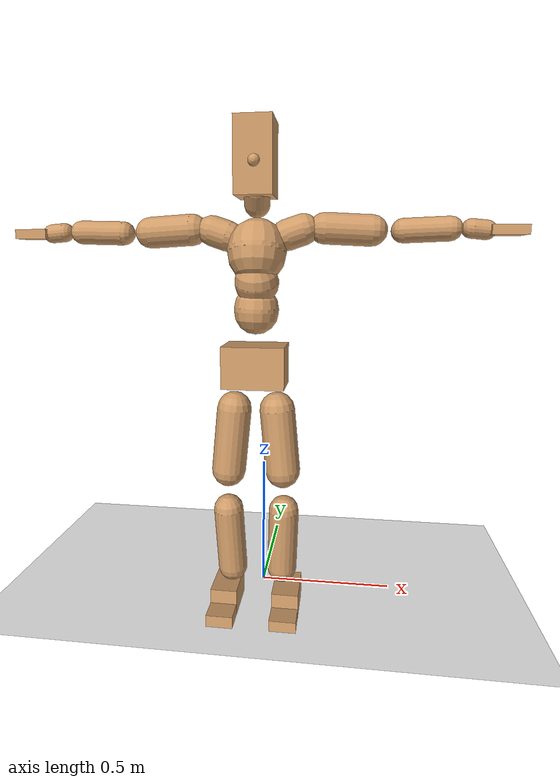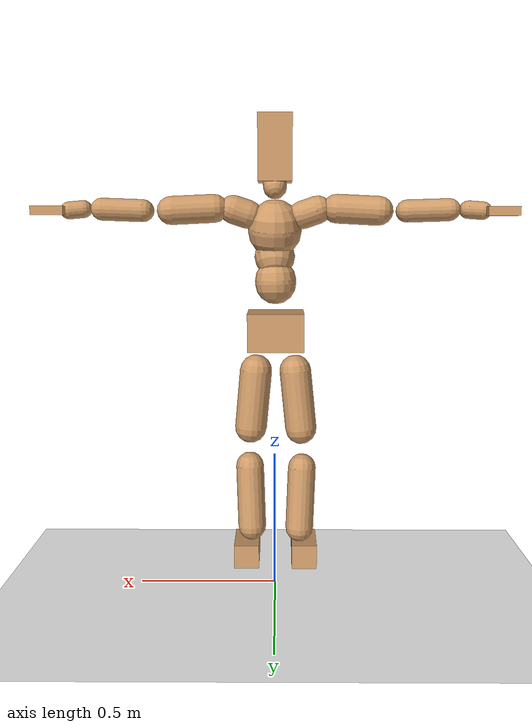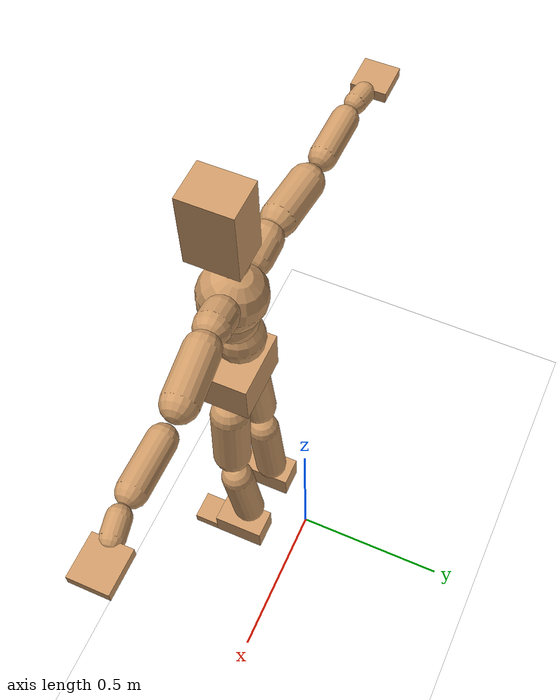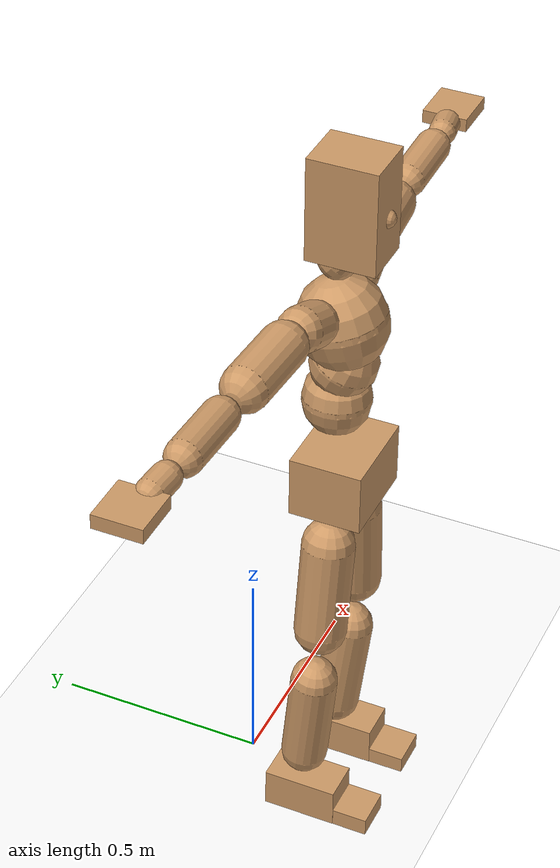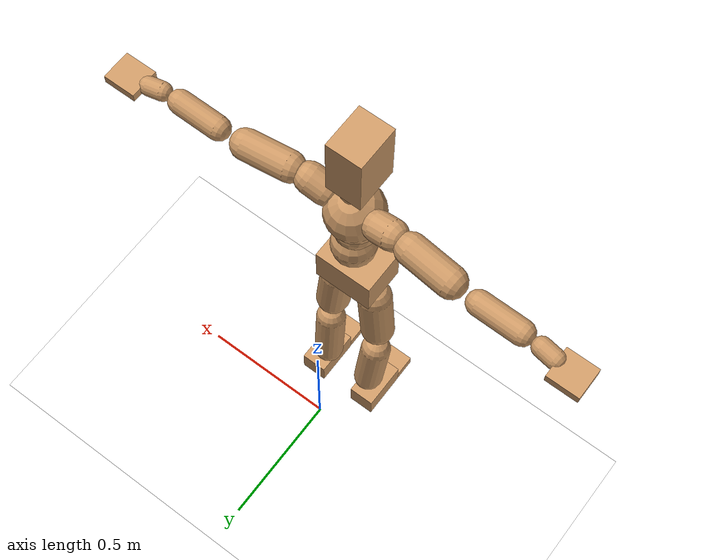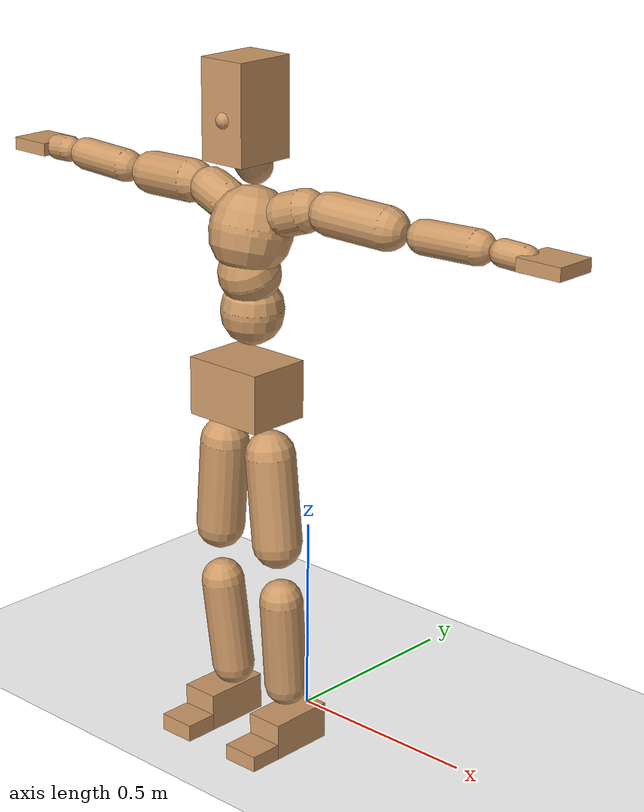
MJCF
<mujoco model="humanoid">
  <option integrator="implicitfast" />

  <visual>
    <global offwidth="1280" offheight="960" />
    <headlight active="1" ambient="0.34 0.34 0.34" diffuse="0.5 0.5 0.5" />
  </visual>

  <default>
    <joint damping="2" stiffness="2" armature="0.01" limited="true" solimplimit="0 .99 .01" />
    <geom condim="1" friction="0.7 0.005 0.0001" solimp=".99 .99 .003" solref="0.015 1" margin="0.001" rgba="0.8 0.6 .4 1" />
    <default class="smplcontact">
      <geom condim="3" friction="1. 0.005 0.0001" solref="0.015 1" solimp="0.98 0.98 0.001" priority="1" />
    </default>
    <default class="stiff_medium">
      <joint stiffness="10" />
    </default>
    <default class="stiff_medium_higher">
      <joint stiffness="50" />
    </default>
    <default class="stiff_high">
      <joint stiffness="100" />
    </default>
  </default>

  <asset>
    <texture type="skybox" builtin="gradient" rgb1="0.99 0.99 0.99" rgb2="0.608 0.828 0.892" width="100" />
    <texture builtin="flat" height="1278" mark="cross" markrgb="1 1 1" name="texgeom" random="0.01" rgb1="0.8 0.6 0.4" rgb2="0.8 0.6 0.4" type="cube" width="127" />
    <texture name="texplane" type="2d" builtin="checker" markrgb="1 1 1" rgb1="0.756 0.772 0.76" rgb2="0.6 0.6 0.6" width="100" height="100" />
    <material name="MatPlane" reflectance="0.5" texture="texplane" texrepeat="1 1" texuniform="true" />
    <material name="geom" texture="texgeom" texuniform="true" />
  </asset>

  <worldbody>
    <light name="tracking_light" pos="0 0 7" dir="0 0 -1" directional="true" cutoff="100" exponent="1" diffuse="1 1 1" specular="0.1 0.1 0.1" mode="trackcom" />
    <camera name="back" pos="0 3 2.4" xyaxes="-1 0 0 0 -1 2" mode="trackcom" />
    <camera name="side" pos="-3 0 2.4" xyaxes="0 -1 0 1 0 2" mode="trackcom" />
    <camera name="front_side" pos="-2.8 -2.8 0.8" xyaxes="0.5 -0.5 0 0.1 0.1 1" mode="trackcom" />
    <geom condim="3" name="floor" pos="0 0 0" rgba="1 1 1 1" size="100 100 .2" type="plane" material="MatPlane" />
    <body name="Pelvis" pos="-0.0018 -0.2233 0.9367" euler="90 0 0">
      <site name="Pelvis" size="0.01" />
      <freejoint name="Pelvis" />
      <geom type="box" pos="-0.0000 -0.0121 -0.0055" size="0.1069 0.0722 0.083" quat="1.0000 0.0000 0.0000 0.0000" density="3165.830099" name="Pelvis" />
      <body name="L_Hip" pos="0.0695 -0.0914 -0.0068">
        <joint name="L_Hip_x" type="hinge" pos="0 0 0" axis="1 0 0" stiffness="10.0" range="-160.0 22.92" class="stiff_medium" damping="15.0" armature="0.01"/>
        <joint name="L_Hip_y" type="hinge" pos="0 0 0" axis="0 1 0" stiffness="10.0" range="-70.0 70.0" class="stiff_medium" damping="10.000000000000002" armature="0.010000000000000007"/>
        <joint name="L_Hip_z" type="hinge" pos="0 0 0" axis="0 0 1" stiffness="10.0" range="-28.65 90.0" class="stiff_medium" damping="9.999999999999998" armature="0.009999999999999997"/>
        <geom type="capsule" density="2040.816327" fromto="0.0069 -0.075 -0.0009 0.0274 -0.3002 -0.0036" size="0.0615" name="L_Hip" />
        <body name="L_Knee" pos="0.0343 -0.3752 -0.0045">
          <joint name="L_Knee_x" type="hinge" pos="0 0 0" axis="1 0 0" range="-5.16 171.89" damping="8.000000000000002" armature="0.010000000000000005" stiffness="2.0"/>
          <joint name="L_Knee_y" type="hinge" pos="0 0 0" axis="0 1 0" range="-4.58 6.88" damping="7.999999999999999" armature="0.009999999999999998" stiffness="2.0"/>
          <joint name="L_Knee_z" type="hinge" pos="0 0 0" axis="0 0 1" range="-6.88 4.58" damping="7.999999999999999" armature="0.009999999999999998" stiffness="2.0"/>
          <geom type="capsule" density="1234.567901" fromto="-0.0027 -0.0796 -0.0087 -0.0109 -0.3184 -0.035" size="0.0541" name="L_Knee" />
          <body name="L_Ankle" pos="-0.0136 -0.398 -0.0437">
            <joint name="L_Ankle_x" type="hinge" pos="0 0 0" axis="1 0 0" range="-45.84 45.84" class="stiff_medium" damping="6.000000000000043" armature="0.010000000000000142" stiffness="10.0"/>
            <joint name="L_Ankle_y" type="hinge" pos="0 0 0" axis="0 1 0" range="-74.48 22.92" class="stiff_medium" damping="3.0" armature="0.010000000000000002" stiffness="10.0"/>
            <joint name="L_Ankle_z" type="hinge" pos="0 0 0" axis="0 0 1" range="-4.58 4.58" class="stiff_medium" damping="5.999999999999927" armature="0.009999999999999757" stiffness="10.0"/>
            <geom type="box" pos="0.0233 -0.0239 0.0242" size="0.0483 0.0464 0.085" quat="1.0000 0.0000 0.0000 0.0000" density="449.071558" name="L_Ankle" class="smplcontact" />
            <body name="L_Toe" pos="0.0264 -0.0558 0.1193">
              <joint name="L_Toe_x" type="hinge" pos="0 0 0" axis="1 0 0" range="-91.67 22.92" armature="0.01000000000000051" damping="2.000000000000051" stiffness="2.0"/>
              <joint name="L_Toe_y" type="hinge" pos="0 0 0" axis="0 1 0" range="-4.58 4.58" armature="0.010000000000000024" damping="2.000000000000002" stiffness="2.0"/>
              <joint name="L_Toe_z" type="hinge" pos="0 0 0" axis="0 0 1" range="-4.58 4.58" armature="0.010000000000001008" damping="2.000000000000101" stiffness="2.0"/>
              <geom type="box" pos="-0.003 0.0055 0.0248" size="0.0478 0.02 0.0496" quat="1.0000 0.0000 0.0000 0.0000" density="423.206892" name="L_Toe" class="smplcontact" />
            </body>
          </body>
        </body>
      </body>
      <body name="R_Hip" pos="-0.0677 -0.0905 -0.0043">
        <joint name="R_Hip_x" type="hinge" pos="0 0 0" axis="1 0 0" stiffness="10.0" range="-160.0 22.92" class="stiff_medium" damping="15.0" armature="0.01"/>
        <joint name="R_Hip_y" type="hinge" pos="0 0 0" axis="0 1 0" stiffness="10.0" range="-70.0 70.0" class="stiff_medium" damping="10.000000000000002" armature="0.010000000000000007"/>
        <joint name="R_Hip_z" type="hinge" pos="0 0 0" axis="0 0 1" stiffness="10.0" range="-90.0 28.65" class="stiff_medium" damping="9.999999999999998" armature="0.009999999999999997"/>
        <geom type="capsule" density="2040.816327" fromto="-0.0077 -0.0765 -0.0018 -0.0306 -0.3061 -0.0071" size="0.0606" name="R_Hip" />
        <body name="R_Knee" pos="-0.0383 -0.3826 -0.0089">
          <joint name="R_Knee_x" type="hinge" pos="0 0 0" axis="1 0 0" range="-5.16 171.89" damping="8.000000000000002" armature="0.010000000000000005" stiffness="2.0"/>
          <joint name="R_Knee_y" type="hinge" pos="0 0 0" axis="0 1 0" range="-6.88 4.58" damping="7.999999999999999" armature="0.009999999999999998" stiffness="2.0"/>
          <joint name="R_Knee_z" type="hinge" pos="0 0 0" axis="0 0 1" range="-4.58 6.88" damping="7.999999999999999" armature="0.009999999999999998" stiffness="2.0"/>
          <geom type="capsule" density="1234.567901" fromto="0.0032 -0.0797 -0.0085 0.0126 -0.3187 -0.0338" size="0.0541" name="R_Knee" />
          <body name="R_Ankle" pos="0.0158 -0.3984 -0.0423">
            <joint name="R_Ankle_x" type="hinge" pos="0 0 0" axis="1 0 0" range="-45.84 45.84" class="stiff_medium" damping="6.000000000000043" armature="0.010000000000000142" stiffness="10.0"/>
            <joint name="R_Ankle_y" type="hinge" pos="0 0 0" axis="0 1 0" range="-22.92 74.48" class="stiff_medium" damping="3.0" armature="0.010000000000000002" stiffness="10.0"/>
            <joint name="R_Ankle_z" type="hinge" pos="0 0 0" axis="0 0 1" range="-4.58 4.58" class="stiff_medium" damping="5.999999999999927" armature="0.009999999999999757" stiffness="10.0"/>
            <geom type="box" pos="-0.0212 -0.0174 0.0256" size="0.0483 0.0478 0.0865" quat="1.0000 0.0000 0.0000 0.0000" density="434.700981" name="R_Ankle" class="smplcontact" />
            <body name="R_Toe" pos="-0.0254 -0.0481 0.1233">
              <joint name="R_Toe_x" type="hinge" pos="0 0 0" axis="1 0 0" range="-91.67 22.92" armature="0.01000000000000051" damping="2.000000000000051" stiffness="2.0"/>
              <joint name="R_Toe_y" type="hinge" pos="0 0 0" axis="0 1 0" range="-4.58 4.58" armature="0.010000000000000024" damping="2.000000000000002" stiffness="2.0"/>
              <joint name="R_Toe_z" type="hinge" pos="0 0 0" axis="0 0 1" range="-4.58 4.58" armature="0.010000000000001008" damping="2.000000000000101" stiffness="2.0"/>
              <geom type="box" pos="0.0042 0.0045 0.0227" size="0.0479 0.0216 0.0493" quat="1.0000 0.0000 0.0000 0.0000" density="407.384095" name="R_Toe" class="smplcontact" />
            </body>
          </body>
        </body>
      </body>
      <body name="Torso" pos="-0.0025 0.109 -0.0267">
        <joint name="Torso_x" type="hinge" pos="0 0 0" axis="1 0 0" range="-25.78 57.3" class="stiff_medium" damping="15.606222008535829" armature="0.010480967312446727" stiffness="10.327891739130434"/>
        <joint name="Torso_y" type="hinge" pos="0 0 0" axis="0 1 0" range="-57.3 57.3" class="stiff_high" damping="20.36774299451142" armature="0.010017785467159812" stiffness="103.52711086956519"/>
        <joint name="Torso_z" type="hinge" pos="0 0 0" axis="0 0 1" range="-34.38 34.38" class="stiff_high" damping="20.603858142408143" armature="0.010324343107383836" stiffness="102.79563695652172"/>
        <geom type="capsule" density="2040.816327" fromto="0.0025 0.0608 0.0005 0.003 0.0743 0.0006" size="0.0769" name="Torso" />
        <body name="Spine" pos="0.0055 0.1352 0.0011">
          <joint name="Spine_x" type="hinge" pos="0 0 0" axis="1 0 0" stiffness="10.395519347826085" range="-25.78 57.3" class="stiff_medium" damping="15.790981391997487" armature="0.01066079357971155"/>
          <joint name="Spine_y" type="hinge" pos="0 0 0" axis="0 1 0" stiffness="10.38605934782609" range="-57.3 57.3" class="stiff_high" damping="8.160160705144056" armature="0.010017668351115701"/>
          <joint name="Spine_z" type="hinge" pos="0 0 0" axis="0 0 1" stiffness="20.747770434782606" range="-34.38 34.38" class="stiff_high" damping="12.410397739807408" armature="0.01031020902973837"/>
          <geom type="capsule" density="2040.816327" fromto="0.0007 0.0238 0.0114 0.0008 0.0291 0.014" size="0.0755" name="Spine" />
          <body name="Chest" pos="0.0015 0.0529 0.0254">
            <joint name="Chest_x" type="hinge" pos="0 0 0" axis="1 0 0" stiffness="10.504091521739129" range="-25.78 57.3" class="stiff_medium" damping="15.939816896904308" armature="0.010750425189862658"/>
            <joint name="Chest_y" type="hinge" pos="0 0 0" axis="0 1 0" stiffness="10.292408478260867" range="-57.3 57.3" class="stiff_high" damping="8.122657669585129" armature="0.010016115238695219"/>
            <joint name="Chest_z" type="hinge" pos="0 0 0" axis="0 0 1" stiffness="20.94831347826087" range="-34.38 34.38" class="stiff_high" damping="12.455440920563023" armature="0.010285766274655423"/>
            <geom type="capsule" density="2040.816327" fromto="-0.0009 0.0682 -0.0173 -0.001 0.0833 -0.0212" size="0.1002" name="Chest" />
            <body name="Neck" pos="-0.0028 0.2139 -0.0429">
              <joint name="Neck_x" type="hinge" pos="0 0 0" axis="1 0 0" range="-28.65 57.3" class="stiff_medium_higher" damping="11.20315755829913" armature="0.011321452453359328" stiffness="55.430493478260864"/>
              <joint name="Neck_y" type="hinge" pos="0 0 0" axis="0 1 0" range="-40.11 40.11" class="stiff_medium_higher" damping="11.369231832879258" armature="0.011644842483068246" stiffness="55.50072173913044"/>
              <joint name="Neck_z" type="hinge" pos="0 0 0" axis="0 0 1" range="-40.11 40.11" class="stiff_medium_higher" damping="11.224464726681385" armature="0.011319012250762291" stiffness="55.653534782608695"/>
              <geom type="capsule" density="1000" fromto="0.001 0.013 0.0103 0.0041 0.052 0.0411" size="0.0436" name="Neck" />
              <body name="Head" pos="0.0052 0.065 0.0513">
                <joint name="Head_x" type="hinge" pos="0 0 0" axis="1 0 0" range="-28.65 57.3" class="stiff_medium_higher" damping="2.2715497215959646" armature="0.011550969347663951" stiffness="55.83880000000001"/>
                <joint name="Head_y" type="hinge" pos="0 0 0" axis="0 1 0" range="-40.11 40.11" class="stiff_medium_higher" damping="2.313515930511325" armature="0.011981713344327065" stiffness="55.83880000000001"/>
                <joint name="Head_z" type="hinge" pos="0 0 0" axis="0 0 1" range="-40.11 40.11" class="stiff_medium_higher" damping="2.2694516692472844" armature="0.011529641752350706" stiffness="55.83880000000001"/>
                <geom type="box" pos="-0.0042 0.0876 -0.0116" size="0.0628725 0.119728 0.07885" quat="1.0000 0.0000 0.0000 0.0000" density="1018.069894" name="Head" />
                <geom type="capsule" name="nose" size="0.02075 0.010375" pos="0 0.07 0.05" quat="1 0 0 0" mass="0" contype="0" conaffinity="0" />
              </body>
            </body>
            <body name="L_Thorax" pos="0.0788 0.1217 -0.0341">
              <joint name="L_Thorax_x" type="hinge" pos="0 0 0" axis="1 0 0" range="-10.89 4.58" class="stiff_medium_higher" damping="19.999999999999993" armature="0.009999999999999993" stiffness="50.0"/>
              <joint name="L_Thorax_y" type="hinge" pos="0 0 0" axis="0 1 0" range="-28.65 17.19" class="stiff_medium_higher" damping="20.0" armature="0.01" stiffness="50.0"/>
              <joint name="L_Thorax_z" type="hinge" pos="0 0 0" axis="0 0 1" range="-31.51 40.11" class="stiff_medium_higher" damping="19.999999999999996" armature="0.009999999999999997" stiffness="50.0"/>
              <geom type="capsule" density="1000" fromto="0.0182 0.0061 -0.0018 0.0728 0.0244 -0.0071" size="0.0521" name="L_Thorax" />
              <body name="L_Shoulder" pos="0.091 0.0305 -0.0089">
                <joint name="L_Shoulder_x" type="hinge" pos="0 0 0" axis="1 0 0" range="-97.4 97.4" class="stiff_medium" damping="6.000000000000025" armature="0.010000000000000087" stiffness="10.0"/>
                <joint name="L_Shoulder_y" type="hinge" pos="0 0 0" axis="0 1 0" range="-108.86 80.21" class="stiff_medium" damping="5.999999999999999" armature="0.009999999999999998" stiffness="10.0"/>
                <joint name="L_Shoulder_z" type="hinge" pos="0 0 0" axis="0 0 1" range="-97.4 85.94" class="stiff_medium" damping="6.0" armature="0.01" stiffness="10.0"/>
                <geom type="capsule" density="1000" fromto="0.0519 -0.0026 -0.0055 0.2077 -0.0102 -0.022" size="0.0517" name="L_Shoulder" />
                <body name="L_Elbow" pos="0.2596 -0.0128 -0.0275">
                  <joint name="L_Elbow_x" type="hinge" pos="0 0 0" axis="1 0 0" range="-17.19 4.58" damping="4.999999999999928" armature="0.009999999999999714" stiffness="2.0"/>
                  <joint name="L_Elbow_y" type="hinge" pos="0 0 0" axis="0 1 0" range="-180.0 17.19" damping="5.0000000000000036" armature="0.010000000000000014" stiffness="2.0"/>
                  <joint name="L_Elbow_z" type="hinge" pos="0 0 0" axis="0 0 1" range="-100.84 4.58" damping="5.000000000000001" armature="0.010000000000000005" stiffness="2.0"/>
                  <geom type="capsule" density="1000" fromto="0.0498 0.0018 -0.0002 0.1994 0.0072 -0.0009" size="0.0405" name="L_Elbow" />
                  <body name="L_Wrist" pos="0.2492 0.009 -0.0012">
                    <joint name="L_Wrist_x" type="hinge" pos="0 0 0" axis="1 0 0" range="-180.0 22.92" armature="0.009999999999999681" damping="1.999999999999968" stiffness="2.0"/>
                    <joint name="L_Wrist_y" type="hinge" pos="0 0 0" axis="0 1 0" range="-17.19 17.19" armature="0.009999999999999959" damping="1.9999999999999958" stiffness="2.0"/>
                    <joint name="L_Wrist_z" type="hinge" pos="0 0 0" axis="0 0 1" range="-22.92 22.92" armature="0.00999999999999996" damping="1.999999999999996" stiffness="2.0"/>
                    <geom type="capsule" density="1000" fromto="0.0168 -0.0016 -0.003 0.0672 -0.0065 -0.012" size="0.0318" name="L_Wrist" class="smplcontact" />
                    <body name="L_Hand" pos="0.084 -0.0082 -0.0149">
                      <joint name="L_Hand_x" type="hinge" pos="0 0 0" axis="1 0 0" range="-17.19 17.19" armature="0.009999999999999825" damping="1.9999999999999825" stiffness="2.0"/>
                      <joint name="L_Hand_y" type="hinge" pos="0 0 0" axis="0 1 0" range="-51.57 51.57" armature="0.010000000000000061" damping="2.0000000000000058" stiffness="2.0"/>
                      <joint name="L_Hand_z" type="hinge" pos="0 0 0" axis="0 0 1" range="-91.67 91.67" armature="0.010000000000000063" damping="2.000000000000006" stiffness="2.0"/>
                      <geom type="box" pos="0.0493 0.001 -0.0058" size="0.0585 0.0158 0.0538" quat="1.0000 0.0000 0.0000 0.0000" density="400.552564" name="L_Hand" class="smplcontact" />
                    </body>
                  </body>
                </body>
              </body>
            </body>
            <body name="R_Thorax" pos="-0.0818 0.1188 -0.0386">
              <joint name="R_Thorax_x" type="hinge" pos="0 0 0" axis="1 0 0" range="-10.89 4.58" class="stiff_medium_higher" damping="19.999999999999993" armature="0.009999999999999993" stiffness="50.0"/>
              <joint name="R_Thorax_y" type="hinge" pos="0 0 0" axis="0 1 0" range="-17.19 28.65" class="stiff_medium_higher" damping="20.0" armature="0.01" stiffness="50.0"/>
              <joint name="R_Thorax_z" type="hinge" pos="0 0 0" axis="0 0 1" range="-40.11 31.51" class="stiff_medium_higher" damping="19.999999999999996" armature="0.009999999999999997" stiffness="50.0"/>
              <geom type="capsule" density="1000" fromto="-0.0192 0.0065 -0.0018 -0.0768 0.026 -0.0073" size="0.0511" name="R_Thorax" />
              <body name="R_Shoulder" pos="-0.096 0.0326 -0.0091">
                <joint name="R_Shoulder_x" type="hinge" pos="0 0 0" axis="1 0 0" range="-97.4 97.4" class="stiff_medium" damping="6.000000000000025" armature="0.010000000000000087" stiffness="10.0"/>
                <joint name="R_Shoulder_y" type="hinge" pos="0 0 0" axis="0 1 0" range="-80.21 108.86" class="stiff_medium" damping="5.999999999999999" armature="0.009999999999999998" stiffness="10.0"/>
                <joint name="R_Shoulder_z" type="hinge" pos="0 0 0" axis="0 0 1" range="-85.94 97.4" class="stiff_medium" damping="6.0" armature="0.01" stiffness="10.0"/>
                <geom type="capsule" density="1000" fromto="-0.0507 -0.0027 -0.0043 -0.203 -0.0107 -0.0171" size="0.0531" name="R_Shoulder" />
                <body name="R_Elbow" pos="-0.2537 -0.0133 -0.0214">
                  <joint name="R_Elbow_x" type="hinge" pos="0 0 0" axis="1 0 0" range="-17.19 4.58" damping="4.999999999999928" armature="0.009999999999999714" stiffness="2.0"/>
                  <joint name="R_Elbow_y" type="hinge" pos="0 0 0" axis="0 1 0" range="-17.19 180.0" damping="5.0000000000000036" armature="0.010000000000000014" stiffness="2.0"/>
                  <joint name="R_Elbow_z" type="hinge" pos="0 0 0" axis="0 0 1" range="-4.58 100.84" damping="5.000000000000001" armature="0.010000000000000005" stiffness="2.0"/>
                  <geom type="capsule" density="1000" fromto="-0.0511 0.0016 -0.0011 -0.2042 0.0062 -0.0044" size="0.0408" name="R_Elbow" />
                  <body name="R_Wrist" pos="-0.2553 0.0078 -0.0056">
                    <joint name="R_Wrist_x" type="hinge" pos="0 0 0" axis="1 0 0" range="-180.0 22.92" armature="0.009999999999999681" damping="1.999999999999968" stiffness="2.0"/>
                    <joint name="R_Wrist_y" type="hinge" pos="0 0 0" axis="0 1 0" range="-17.19 17.19" armature="0.009999999999999959" damping="1.9999999999999958" stiffness="2.0"/>
                    <joint name="R_Wrist_z" type="hinge" pos="0 0 0" axis="0 0 1" range="-22.92 22.92" armature="0.00999999999999996" damping="1.999999999999996" stiffness="2.0"/>
                    <geom type="capsule" density="1000" fromto="-0.0169 -0.0012 -0.0021 -0.0677 -0.0049 -0.0083" size="0.0326" name="R_Wrist" class="smplcontact" />
                    <body name="R_Hand" pos="-0.0846 -0.0061 -0.0103">
                      <joint name="R_Hand_x" type="hinge" pos="0 0 0" axis="1 0 0" range="-17.19 17.19" armature="0.009999999999999825" damping="1.9999999999999825" stiffness="2.0"/>
                      <joint name="R_Hand_y" type="hinge" pos="0 0 0" axis="0 1 0" range="-51.57 51.57" armature="0.010000000000000061" damping="2.0000000000000058" stiffness="2.0"/>
                      <joint name="R_Hand_z" type="hinge" pos="0 0 0" axis="0 0 1" range="-91.67 91.67" armature="0.010000000000000063" damping="2.000000000000006" stiffness="2.0"/>
                      <geom type="box" pos="-0.0462 -0.0009 -0.0079" size="0.0569 0.0164 0.0546" quat="1.0000 0.0000 0.0000 0.0000" density="403.679611" name="R_Hand" class="smplcontact" />
                    </body>
                  </body>
                </body>
              </body>
            </body>
          </body>
        </body>
      </body>
    </body>
  </worldbody>
  <actuator>
    <general name="L_Hip_x" joint="L_Hip_x" biastype="affine" gainprm="287.33006409732246" biasprm="-215.3247604770444 -180.0 -2.0" ctrllimited="true" ctrlrange="-1 1" forcerange="-360.0 360.0" />
    <general name="L_Hip_y" joint="L_Hip_y" biastype="affine" gainprm="219.9114857512855" biasprm="0.0 -180.0 -2.0000000000000004" ctrllimited="true" ctrlrange="-1 1" forcerange="-360.0 360.0" />
    <general name="L_Hip_z" joint="L_Hip_z" biastype="affine" gainprm="186.3749841742145" biasprm="96.3683546488669 -180.0 -1.9999999999999996" ctrllimited="true" ctrlrange="-1 1" forcerange="-360.0 360.0" />
    <general name="L_Knee_x" joint="L_Knee_x" biastype="affine" gainprm="278.10948965903646" biasprm="261.8988715665131 -180.0 -2.0000000000000004" ctrllimited="true" ctrlrange="-1 1" forcerange="-360.0 360.0" />
    <general name="L_Knee_y" joint="L_Knee_y" biastype="affine" gainprm="18.001325905069514" biasprm="3.612831551628262 -180.0 -1.9999999999999998" ctrllimited="true" ctrlrange="-1 1" forcerange="-360.0 360.0" />
    <general name="L_Knee_z" joint="L_Knee_z" biastype="affine" gainprm="18.001325905069514" biasprm="-3.612831551628262 -180.0 -1.9999999999999998" ctrllimited="true" ctrlrange="-1 1" forcerange="-360.0 360.0" />
    <general name="L_Ankle_x" joint="L_Ankle_x" biastype="affine" gainprm="72.00530362027807" biasprm="0.0 -90.0 -2.000000000000014" ctrllimited="true" ctrlrange="-1 1" forcerange="-180.0 180.0" />
    <general name="L_Ankle_y" joint="L_Ankle_y" biastype="affine" gainprm="76.49778111491148" biasprm="-40.49512930477244 -90.0 -2.0" ctrllimited="true" ctrlrange="-1 1" forcerange="-180.0 180.0" />
    <general name="L_Ankle_z" joint="L_Ankle_z" biastype="affine" gainprm="7.1942471767206255" biasprm="0.0 -90.0 -1.9999999999999758" ctrllimited="true" ctrlrange="-1 1" forcerange="-180.0 180.0" />
    <general name="L_Toe_x" joint="L_Toe_x" biastype="affine" gainprm="71.99902043497087" biasprm="-43.19689898685965 -72.0 -0.8000000000000205" ctrllimited="true" ctrlrange="-1 1" forcerange="-144.0 144.0" />
    <general name="L_Toe_y" joint="L_Toe_y" biastype="affine" gainprm="5.755397741376501" biasprm="0.0 -72.0 -0.8000000000000009" ctrllimited="true" ctrlrange="-1 1" forcerange="-144.0 144.0" />
    <general name="L_Toe_z" joint="L_Toe_z" biastype="affine" gainprm="5.755397741376501" biasprm="0.0 -72.0 -0.8000000000000403" ctrllimited="true" ctrlrange="-1 1" forcerange="-144.0 144.0" />
    <general name="R_Hip_x" joint="R_Hip_x" biastype="affine" gainprm="287.33006409732246" biasprm="-215.3247604770444 -180.0 -2.0" ctrllimited="true" ctrlrange="-1 1" forcerange="-360.0 360.0" />
    <general name="R_Hip_y" joint="R_Hip_y" biastype="affine" gainprm="219.9114857512855" biasprm="0.0 -180.0 -2.0000000000000004" ctrllimited="true" ctrlrange="-1 1" forcerange="-360.0 360.0" />
    <general name="R_Hip_z" joint="R_Hip_z" biastype="affine" gainprm="186.3749841742145" biasprm="-96.3683546488669 -180.0 -1.9999999999999996" ctrllimited="true" ctrlrange="-1 1" forcerange="-360.0 360.0" />
    <general name="R_Knee_x" joint="R_Knee_x" biastype="affine" gainprm="278.10948965903646" biasprm="261.8988715665131 -180.0 -2.0000000000000004" ctrllimited="true" ctrlrange="-1 1" forcerange="-360.0 360.0" />
    <general name="R_Knee_y" joint="R_Knee_y" biastype="affine" gainprm="18.001325905069514" biasprm="-3.612831551628262 -180.0 -1.9999999999999998" ctrllimited="true" ctrlrange="-1 1" forcerange="-360.0 360.0" />
    <general name="R_Knee_z" joint="R_Knee_z" biastype="affine" gainprm="18.001325905069514" biasprm="3.612831551628262 -180.0 -1.9999999999999998" ctrllimited="true" ctrlrange="-1 1" forcerange="-360.0 360.0" />
    <general name="R_Ankle_x" joint="R_Ankle_x" biastype="affine" gainprm="72.00530362027807" biasprm="0.0 -90.0 -2.000000000000014" ctrllimited="true" ctrlrange="-1 1" forcerange="-180.0 180.0" />
    <general name="R_Ankle_y" joint="R_Ankle_y" biastype="affine" gainprm="76.49778111491148" biasprm="40.49512930477244 -90.0 -2.0" ctrllimited="true" ctrlrange="-1 1" forcerange="-180.0 180.0" />
    <general name="R_Ankle_z" joint="R_Ankle_z" biastype="affine" gainprm="7.1942471767206255" biasprm="0.0 -90.0 -1.9999999999999758" ctrllimited="true" ctrlrange="-1 1" forcerange="-180.0 180.0" />
    <general name="R_Toe_x" joint="R_Toe_x" biastype="affine" gainprm="71.99902043497087" biasprm="-43.19689898685965 -72.0 -0.8000000000000205" ctrllimited="true" ctrlrange="-1 1" forcerange="-144.0 144.0" />
    <general name="R_Toe_y" joint="R_Toe_y" biastype="affine" gainprm="5.755397741376501" biasprm="0.0 -72.0 -0.8000000000000009" ctrllimited="true" ctrlrange="-1 1" forcerange="-144.0 144.0" />
    <general name="R_Toe_z" joint="R_Toe_z" biastype="affine" gainprm="5.755397741376501" biasprm="0.0 -72.0 -0.8000000000000403" ctrllimited="true" ctrlrange="-1 1" forcerange="-144.0 144.0" />
    <general name="Torso_x" joint="Torso_x" biastype="affine" gainprm="179.70773826181184" biasprm="68.17992188267101 -247.86940173913044 -4.161659202276221" ctrllimited="true" ctrlrange="-1 1" forcerange="-371.80410260869564 371.80410260869564" />
    <general name="Torso_y" joint="Torso_y" biastype="affine" gainprm="248.48336836977433" biasprm="0.0 -248.46506608695645 -4.073548598902284" ctrllimited="true" ctrlrange="-1 1" forcerange="-372.6975991304347 372.6975991304347" />
    <general name="Torso_z" joint="Torso_z" biastype="affine" gainprm="148.03662099788448" biasprm="0.0 -246.70952869565212 -4.120771628481629" ctrllimited="true" ctrlrange="-1 1" forcerange="-370.0642930434782 370.0642930434782" />
    <general name="Spine_x" joint="Spine_x" biastype="affine" gainprm="180.88447451251284" biasprm="68.6263677977179 -249.49246434782606 -4.21092837119933" ctrllimited="true" ctrlrange="-1 1" forcerange="-374.2386965217391 374.2386965217391" />
    <general name="Spine_y" joint="Spine_y" biastype="affine" gainprm="249.2837855861482" biasprm="0.0 -249.26542434782613 -4.080080352572028" ctrllimited="true" ctrlrange="-1 1" forcerange="-373.8981365217392 373.8981365217392" />
    <general name="Spine_z" joint="Spine_z" biastype="affine" gainprm="149.39495096003503" biasprm="0.0 -248.97324521739128 -4.136799246602469" ctrllimited="true" ctrlrange="-1 1" forcerange="-373.4598678260869 373.4598678260869" />
    <general name="Chest_x" joint="Chest_x" biastype="affine" gainprm="182.77365579993443" biasprm="69.34311062607044 -252.0981965217391 -4.250617839174482" ctrllimited="true" ctrlrange="-1 1" forcerange="-378.14729478260864 378.14729478260864" />
    <general name="Chest_y" joint="Chest_y" biastype="affine" gainprm="247.0359991536993" biasprm="0.0 -247.01780347826084 -4.0613288347925645" ctrllimited="true" ctrlrange="-1 1" forcerange="-370.5267052173913 370.5267052173913" />
    <general name="Chest_z" joint="Chest_z" biastype="affine" gainprm="150.83896723349375" biasprm="0.0 -251.37976173913046 -4.151813640187674" ctrllimited="true" ctrlrange="-1 1" forcerange="-377.0696426086957 377.0696426086957" />
    <general name="Neck_x" joint="Neck_x" biastype="affine" gainprm="29.93467134543012" biasprm="9.97822378181004 -39.909955304347825 -0.8962526046639305" ctrllimited="true" ctrlrange="-1 1" forcerange="-79.81991060869565 79.81991060869565" />
    <general name="Neck_y" joint="Neck_y" biastype="affine" gainprm="27.97442423979458" biasprm="0.0 -39.96051965217392 -0.9095385466303407" ctrllimited="true" ctrlrange="-1 1" forcerange="-79.92103930434784 79.92103930434784" />
    <general name="Neck_z" joint="Neck_z" biastype="affine" gainprm="28.051447686944112" biasprm="0.0 -40.07054504347826 -0.8979571781345108" ctrllimited="true" ctrlrange="-1 1" forcerange="-80.14109008695652 80.14109008695652" />
    <general name="Head_x" joint="Head_x" biastype="affine" gainprm="20.103448738959916" biasprm="6.701149579653305 -26.802624000000005 -0.9086198886383858" ctrllimited="true" ctrlrange="-1 1" forcerange="-53.60524800000001 53.60524800000001" />
    <general name="Head_y" joint="Head_y" biastype="affine" gainprm="18.763218823029256" biasprm="0.0 -26.802624000000005 -0.92540637220453" ctrllimited="true" ctrlrange="-1 1" forcerange="-53.60524800000001 53.60524800000001" />
    <general name="Head_z" joint="Head_z" biastype="affine" gainprm="18.763218823029256" biasprm="0.0 -26.802624000000005 -0.9077806676989137" ctrllimited="true" ctrlrange="-1 1" forcerange="-53.60524800000001 53.60524800000001" />
    <general name="L_Thorax_x" joint="L_Thorax_x" biastype="affine" gainprm="16.200146117011364" biasprm="-6.6078165480505335 -120.0 -1.5999999999999996" ctrllimited="true" ctrlrange="-1 1" forcerange="-240.0 240.0" />
    <general name="L_Thorax_y" joint="L_Thorax_y" biastype="affine" gainprm="48.00353574685204" biasprm="-12.00088393671301 -120.0 -1.6" ctrllimited="true" ctrlrange="-1 1" forcerange="-240.0 240.0" />
    <general name="L_Thorax_z" joint="L_Thorax_z" biastype="affine" gainprm="75.00028861670033" biasprm="9.00589894029074 -120.0 -1.5999999999999996" ctrllimited="true" ctrlrange="-1 1" forcerange="-240.0 240.0" />
    <general name="L_Shoulder_x" joint="L_Shoulder_x" biastype="affine" gainprm="81.5976331892389" biasprm="0.0 -48.0 -1.6000000000000068" ctrllimited="true" ctrlrange="-1 1" forcerange="-96.0 96.0" />
    <general name="L_Shoulder_y" joint="L_Shoulder_y" biastype="affine" gainprm="79.19745640189629" biasprm="-12.00088393671301 -48.0 -1.5999999999999999" ctrllimited="true" ctrlrange="-1 1" forcerange="-96.0 96.0" />
    <general name="L_Shoulder_z" joint="L_Shoulder_z" biastype="affine" gainprm="76.79727961455369" biasprm="-4.800353574685214 -48.0 -1.6" ctrllimited="true" ctrlrange="-1 1" forcerange="-96.0 96.0" />
    <general name="L_Elbow_x" joint="L_Elbow_x" biastype="affine" gainprm="13.67849441372996" biasprm="-7.923096672353461 -72.0 -0.7999999999999886" ctrllimited="true" ctrlrange="-1 1" forcerange="-144.0 144.0" />
    <general name="L_Elbow_y" joint="L_Elbow_y" biastype="affine" gainprm="123.89813107227425" biasprm="-102.29653998619085 -72.0 -0.8000000000000006" ctrllimited="true" ctrlrange="-1 1" forcerange="-144.0 144.0" />
    <general name="L_Elbow_z" joint="L_Elbow_z" biastype="affine" gainprm="66.23733950828719" biasprm="-60.4819417669107 -72.0 -0.8000000000000003" ctrllimited="true" ctrlrange="-1 1" forcerange="-144.0 144.0" />
    <general name="L_Wrist_x" joint="L_Wrist_x" biastype="affine" gainprm="21.24973270888136" biasprm="-16.449379134196157 -12.0 -0.7999999999999873" ctrllimited="true" ctrlrange="-1 1" forcerange="-24.0 24.0" />
    <general name="L_Wrist_y" joint="L_Wrist_y" biastype="affine" gainprm="3.6002651810139037" biasprm="0.0 -12.0 -0.7999999999999984" ctrllimited="true" ctrlrange="-1 1" forcerange="-24.0 24.0" />
    <general name="L_Wrist_z" joint="L_Wrist_z" biastype="affine" gainprm="4.800353574685205" biasprm="0.0 -12.0 -0.7999999999999985" ctrllimited="true" ctrlrange="-1 1" forcerange="-24.0 24.0" />
    <general name="L_Hand_x" joint="L_Hand_x" biastype="affine" gainprm="3.6002651810139037" biasprm="0.0 -12.0 -0.799999999999993" ctrllimited="true" ctrlrange="-1 1" forcerange="-24.0 24.0" />
    <general name="L_Hand_y" joint="L_Hand_y" biastype="affine" gainprm="10.800795543041708" biasprm="0.0 -12.0 -0.8000000000000024" ctrllimited="true" ctrlrange="-1 1" forcerange="-24.0 24.0" />
    <general name="L_Hand_z" joint="L_Hand_z" biastype="affine" gainprm="19.199319903638422" biasprm="0.0 -12.0 -0.8000000000000025" ctrllimited="true" ctrlrange="-1 1" forcerange="-24.0 24.0" />
    <general name="R_Thorax_x" joint="R_Thorax_x" biastype="affine" gainprm="16.200146117011364" biasprm="-6.6078165480505335 -120.0 -1.5999999999999996" ctrllimited="true" ctrlrange="-1 1" forcerange="-240.0 240.0" />
    <general name="R_Thorax_y" joint="R_Thorax_y" biastype="affine" gainprm="48.00353574685204" biasprm="12.000883936713002 -120.0 -1.6" ctrllimited="true" ctrlrange="-1 1" forcerange="-240.0 240.0" />
    <general name="R_Thorax_z" joint="R_Thorax_z" biastype="affine" gainprm="75.00028861670033" biasprm="-9.00589894029074 -120.0 -1.5999999999999996" ctrllimited="true" ctrlrange="-1 1" forcerange="-240.0 240.0" />
    <general name="R_Shoulder_x" joint="R_Shoulder_x" biastype="affine" gainprm="81.5976331892389" biasprm="0.0 -48.0 -1.6000000000000068" ctrllimited="true" ctrlrange="-1 1" forcerange="-96.0 96.0" />
    <general name="R_Shoulder_y" joint="R_Shoulder_y" biastype="affine" gainprm="79.19745640189629" biasprm="12.00088393671301 -48.0 -1.5999999999999999" ctrllimited="true" ctrlrange="-1 1" forcerange="-96.0 96.0" />
    <general name="R_Shoulder_z" joint="R_Shoulder_z" biastype="affine" gainprm="76.79727961455369" biasprm="4.800353574685204 -48.0 -1.6" ctrllimited="true" ctrlrange="-1 1" forcerange="-96.0 96.0" />
    <general name="R_Elbow_x" joint="R_Elbow_x" biastype="affine" gainprm="13.67849441372996" biasprm="-7.923096672353461 -72.0 -0.7999999999999886" ctrllimited="true" ctrlrange="-1 1" forcerange="-144.0 144.0" />
    <general name="R_Elbow_y" joint="R_Elbow_y" biastype="affine" gainprm="123.89813107227425" biasprm="102.29653998619085 -72.0 -0.8000000000000006" ctrllimited="true" ctrlrange="-1 1" forcerange="-144.0 144.0" />
    <general name="R_Elbow_z" joint="R_Elbow_z" biastype="affine" gainprm="66.23733950828719" biasprm="60.481941766910694 -72.0 -0.8000000000000003" ctrllimited="true" ctrlrange="-1 1" forcerange="-144.0 144.0" />
    <general name="R_Wrist_x" joint="R_Wrist_x" biastype="affine" gainprm="21.24973270888136" biasprm="-16.449379134196157 -12.0 -0.7999999999999873" ctrllimited="true" ctrlrange="-1 1" forcerange="-24.0 24.0" />
    <general name="R_Wrist_y" joint="R_Wrist_y" biastype="affine" gainprm="3.6002651810139037" biasprm="0.0 -12.0 -0.7999999999999984" ctrllimited="true" ctrlrange="-1 1" forcerange="-24.0 24.0" />
    <general name="R_Wrist_z" joint="R_Wrist_z" biastype="affine" gainprm="4.800353574685205" biasprm="0.0 -12.0 -0.7999999999999985" ctrllimited="true" ctrlrange="-1 1" forcerange="-24.0 24.0" />
    <general name="R_Hand_x" joint="R_Hand_x" biastype="affine" gainprm="3.6002651810139037" biasprm="0.0 -12.0 -0.799999999999993" ctrllimited="true" ctrlrange="-1 1" forcerange="-24.0 24.0" />
    <general name="R_Hand_y" joint="R_Hand_y" biastype="affine" gainprm="10.800795543041708" biasprm="0.0 -12.0 -0.8000000000000024" ctrllimited="true" ctrlrange="-1 1" forcerange="-24.0 24.0" />
    <general name="R_Hand_z" joint="R_Hand_z" biastype="affine" gainprm="19.199319903638422" biasprm="0.0 -12.0 -0.8000000000000025" ctrllimited="true" ctrlrange="-1 1" forcerange="-24.0 24.0" />
  </actuator>
  <contact>
    <exclude body1="Torso" body2="Chest" />
    <exclude body1="Head" body2="Chest" />
    <exclude body1="R_Knee" body2="R_Toe" />
    <exclude body1="R_Knee" body2="L_Ankle" />
    <exclude body1="R_Knee" body2="L_Toe" />
    <exclude body1="L_Knee" body2="L_Toe" />
    <exclude body1="L_Knee" body2="R_Ankle" />
    <exclude body1="L_Knee" body2="R_Toe" />
    <exclude body1="L_Shoulder" body2="Chest" />
    <exclude body1="R_Shoulder" body2="Chest" />
  </contact>
  <sensor>
    <framelinvel name="sensor_Pelvis_framelinvel" objtype="xbody" objname="Pelvis" />
    <framelinvel name="sensor_L_Hip_framelinvel" objtype="xbody" objname="L_Hip" />
    <framelinvel name="sensor_L_Knee_framelinvel" objtype="xbody" objname="L_Knee" />
    <framelinvel name="sensor_L_Ankle_framelinvel" objtype="xbody" objname="L_Ankle" />
    <framelinvel name="sensor_L_Toe_framelinvel" objtype="xbody" objname="L_Toe" />
    <framelinvel name="sensor_R_Hip_framelinvel" objtype="xbody" objname="R_Hip" />
    <framelinvel name="sensor_R_Knee_framelinvel" objtype="xbody" objname="R_Knee" />
    <framelinvel name="sensor_R_Ankle_framelinvel" objtype="xbody" objname="R_Ankle" />
    <framelinvel name="sensor_R_Toe_framelinvel" objtype="xbody" objname="R_Toe" />
    <framelinvel name="sensor_Torso_framelinvel" objtype="xbody" objname="Torso" />
    <framelinvel name="sensor_Spine_framelinvel" objtype="xbody" objname="Spine" />
    <framelinvel name="sensor_Chest_framelinvel" objtype="xbody" objname="Chest" />
    <framelinvel name="sensor_Neck_framelinvel" objtype="xbody" objname="Neck" />
    <framelinvel name="sensor_Head_framelinvel" objtype="xbody" objname="Head" />
    <framelinvel name="sensor_L_Thorax_framelinvel" objtype="xbody" objname="L_Thorax" />
    <framelinvel name="sensor_L_Shoulder_framelinvel" objtype="xbody" objname="L_Shoulder" />
    <framelinvel name="sensor_L_Elbow_framelinvel" objtype="xbody" objname="L_Elbow" />
    <framelinvel name="sensor_L_Wrist_framelinvel" objtype="xbody" objname="L_Wrist" />
    <framelinvel name="sensor_L_Hand_framelinvel" objtype="xbody" objname="L_Hand" />
    <framelinvel name="sensor_R_Thorax_framelinvel" objtype="xbody" objname="R_Thorax" />
    <framelinvel name="sensor_R_Shoulder_framelinvel" objtype="xbody" objname="R_Shoulder" />
    <framelinvel name="sensor_R_Elbow_framelinvel" objtype="xbody" objname="R_Elbow" />
    <framelinvel name="sensor_R_Wrist_framelinvel" objtype="xbody" objname="R_Wrist" />
    <framelinvel name="sensor_R_Hand_framelinvel" objtype="xbody" objname="R_Hand" />
    <frameangvel name="sensor_Pelvis_frameangvel" objtype="xbody" objname="Pelvis" />
    <frameangvel name="sensor_L_Hip_frameangvel" objtype="xbody" objname="L_Hip" />
    <frameangvel name="sensor_L_Knee_frameangvel" objtype="xbody" objname="L_Knee" />
    <frameangvel name="sensor_L_Ankle_frameangvel" objtype="xbody" objname="L_Ankle" />
    <frameangvel name="sensor_L_Toe_frameangvel" objtype="xbody" objname="L_Toe" />
    <frameangvel name="sensor_R_Hip_frameangvel" objtype="xbody" objname="R_Hip" />
    <frameangvel name="sensor_R_Knee_frameangvel" objtype="xbody" objname="R_Knee" />
    <frameangvel name="sensor_R_Ankle_frameangvel" objtype="xbody" objname="R_Ankle" />
    <frameangvel name="sensor_R_Toe_frameangvel" objtype="xbody" objname="R_Toe" />
    <frameangvel name="sensor_Torso_frameangvel" objtype="xbody" objname="Torso" />
    <frameangvel name="sensor_Spine_frameangvel" objtype="xbody" objname="Spine" />
    <frameangvel name="sensor_Chest_frameangvel" objtype="xbody" objname="Chest" />
    <frameangvel name="sensor_Neck_frameangvel" objtype="xbody" objname="Neck" />
    <frameangvel name="sensor_Head_frameangvel" objtype="xbody" objname="Head" />
    <frameangvel name="sensor_L_Thorax_frameangvel" objtype="xbody" objname="L_Thorax" />
    <frameangvel name="sensor_L_Shoulder_frameangvel" objtype="xbody" objname="L_Shoulder" />
    <frameangvel name="sensor_L_Elbow_frameangvel" objtype="xbody" objname="L_Elbow" />
    <frameangvel name="sensor_L_Wrist_frameangvel" objtype="xbody" objname="L_Wrist" />
    <frameangvel name="sensor_L_Hand_frameangvel" objtype="xbody" objname="L_Hand" />
    <frameangvel name="sensor_R_Thorax_frameangvel" objtype="xbody" objname="R_Thorax" />
    <frameangvel name="sensor_R_Shoulder_frameangvel" objtype="xbody" objname="R_Shoulder" />
    <frameangvel name="sensor_R_Elbow_frameangvel" objtype="xbody" objname="R_Elbow" />
    <frameangvel name="sensor_R_Wrist_frameangvel" objtype="xbody" objname="R_Wrist" />
    <frameangvel name="sensor_R_Hand_frameangvel" objtype="xbody" objname="R_Hand" />
    <subtreelinvel name="Chest_subtreelinvel" body="Chest" />
    <gyro name="Pelvis_gyro" site="Pelvis" />
  </sensor>
</mujoco>
